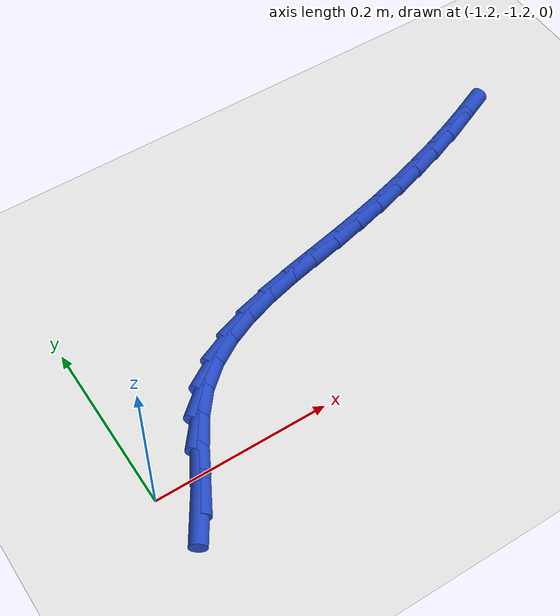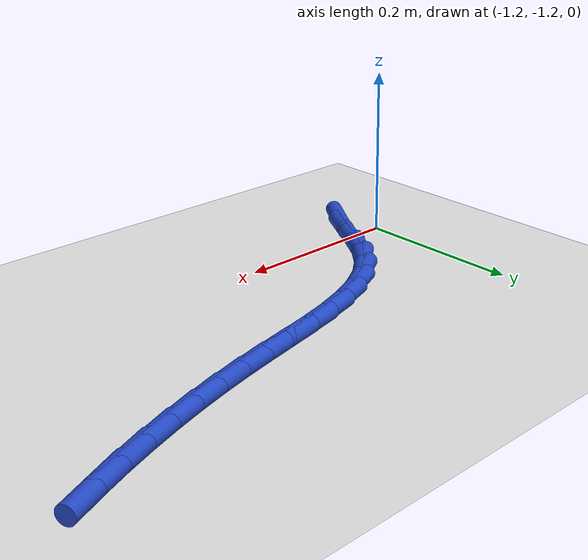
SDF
<sdf version="1.6">
 <world name="default">
  <model name="ground_plane">
   <static>1</static>
   <link name="link">
    <collision name="collision">
     <geometry><plane><normal>0 0 1</normal><size>100 100</size></plane></geometry>
     <surface><friction><ode><mu>100</mu><mu2>50</mu2></ode></friction></surface>
    </collision>
    <visual name="visual">
     <cast_shadows>0</cast_shadows>
     <geometry><plane><normal>0 0 1</normal><size>100 100</size></plane></geometry>
     <material>
      <script><uri>file://media/materials/scripts/gazebo.material</uri><name>Gazebo/WhiteGlow</name></script>
     </material>
    </visual>
   </link>
  </model>
  <model name="line">
   <link name="link_166">
    <pose>-1.1703718244567693 -1.236242698342462 0.01 0 1.57 0.9981574674073149</pose>
    <collision name="collision">
     <geometry><cylinder><radius>0.01</radius><length>0.08</length></cylinder></geometry>
    </collision>
    <visual name="visual">
     <material>
      <script><name>Gazebo/Blue</name><uri>file://media/materials/scripts/gazebo.material</uri></script>
     </material>
     <geometry><cylinder><radius>0.01</radius><length>0.08</length></cylinder></geometry>
    </visual>
   </link>
   <link name="link_167">
    <pose>-1.1533050083629022 -1.209770118449086 0.01 0 1.57 1.0666875061482994</pose>
    <collision name="collision">
     <geometry><cylinder><radius>0.01</radius><length>0.08</length></cylinder></geometry>
    </collision>
    <visual name="visual">
     <material>
      <script><name>Gazebo/Blue</name><uri>file://media/materials/scripts/gazebo.material</uri></script>
     </material>
     <geometry><cylinder><radius>0.01</radius><length>0.08</length></cylinder></geometry>
    </visual>
   </link>
   <link name="link_168">
    <pose>-1.1362859012073245 -1.178918819043703 0.01 0 1.57 1.0294121001519625</pose>
    <collision name="collision">
     <geometry><cylinder><radius>0.01</radius><length>0.08</length></cylinder></geometry>
    </collision>
    <visual name="visual">
     <material>
      <script><name>Gazebo/Blue</name><uri>file://media/materials/scripts/gazebo.material</uri></script>
     </material>
     <geometry><cylinder><radius>0.01</radius><length>0.08</length></cylinder></geometry>
    </visual>
   </link>
   <link name="link_169">
    <pose>-1.117661526809869 -1.1479459630457978 0.01 0 1.57 0.8921691122647628</pose>
    <collision name="collision">
     <geometry><cylinder><radius>0.01</radius><length>0.08</length></cylinder></geometry>
    </collision>
    <visual name="visual">
     <material>
      <script><name>Gazebo/Blue</name><uri>file://media/materials/scripts/gazebo.material</uri></script>
     </material>
     <geometry><cylinder><radius>0.01</radius><length>0.08</length></cylinder></geometry>
    </visual>
   </link>
   <link name="link_170">
    <pose>-1.0958631977286728 -1.1209140835802285 0.01 0 1.57 0.7104403583392468</pose>
    <collision name="collision">
     <geometry><cylinder><radius>0.01</radius><length>0.08</length></cylinder></geometry>
    </collision>
    <visual name="visual">
     <material>
      <script><name>Gazebo/Blue</name><uri>file://media/materials/scripts/gazebo.material</uri></script>
     </material>
     <geometry><cylinder><radius>0.01</radius><length>0.08</length></cylinder></geometry>
    </visual>
   </link>
   <link name="link_171">
    <pose>-1.0705226780253612 -1.0991137701612623 0.01 0 1.57 0.5488883089751425</pose>
    <collision name="collision">
     <geometry><cylinder><radius>0.01</radius><length>0.08</length></cylinder></geometry>
    </collision>
    <visual name="visual">
     <material>
      <script><name>Gazebo/Blue</name><uri>file://media/materials/scripts/gazebo.material</uri></script>
     </material>
     <geometry><cylinder><radius>0.01</radius><length>0.08</length></cylinder></geometry>
    </visual>
   </link>
   <link name="link_172">
    <pose>-1.0421657207841775 -1.081771316367863 0.01 0 1.57 0.4184125386838309</pose>
    <collision name="collision">
     <geometry><cylinder><radius>0.01</radius><length>0.08</length></cylinder></geometry>
    </collision>
    <visual name="visual">
     <material>
      <script><name>Gazebo/Blue</name><uri>file://media/materials/scripts/gazebo.material</uri></script>
     </material>
     <geometry><cylinder><radius>0.01</radius><length>0.08</length></cylinder></geometry>
    </visual>
   </link>
   <link name="link_173">
    <pose>-1.011339401110199 -1.0680637814373775 0.01 0 1.57 0.3211830656439573</pose>
    <collision name="collision">
     <geometry><cylinder><radius>0.01</radius><length>0.08</length></cylinder></geometry>
    </collision>
    <visual name="visual">
     <material>
      <script><name>Gazebo/Blue</name><uri>file://media/materials/scripts/gazebo.material</uri></script>
     </material>
     <geometry><cylinder><radius>0.01</radius><length>0.08</length></cylinder></geometry>
    </visual>
   </link>
   <link name="link_174">
    <pose>-0.9785907941085048 -1.0571682246071537 0.01 0 1.57 0.25531007122278226</pose>
    <collision name="collision">
     <geometry><cylinder><radius>0.01</radius><length>0.08</length></cylinder></geometry>
    </collision>
    <visual name="visual">
     <material>
      <script><name>Gazebo/Blue</name><uri>file://media/materials/scripts/gazebo.material</uri></script>
     </material>
     <geometry><cylinder><radius>0.01</radius><length>0.08</length></cylinder></geometry>
    </visual>
   </link>
   <link name="link_175">
    <pose>-0.9444669748841723 -1.048261705114539 0.01 0 1.57 0.21794145759040293</pose>
    <collision name="collision">
     <geometry><cylinder><radius>0.01</radius><length>0.08</length></cylinder></geometry>
    </collision>
    <visual name="visual">
     <material>
      <script><name>Gazebo/Blue</name><uri>file://media/materials/scripts/gazebo.material</uri></script>
     </material>
     <geometry><cylinder><radius>0.01</radius><length>0.08</length></cylinder></geometry>
    </visual>
   </link>
   <link name="link_176">
    <pose>-0.909515018542279 -1.0405212821968797 0.01 0 1.57 0.2069468854359148</pose>
    <collision name="collision">
     <geometry><cylinder><radius>0.01</radius><length>0.08</length></cylinder></geometry>
    </collision>
    <visual name="visual">
     <material>
      <script><name>Gazebo/Blue</name><uri>file://media/materials/scripts/gazebo.material</uri></script>
     </material>
     <geometry><cylinder><radius>0.01</radius><length>0.08</length></cylinder></geometry>
    </visual>
   </link>
   <link name="link_177">
    <pose>-0.874282000187903 -1.033124015091524 0.01 0 1.57 0.2207873226034661</pose>
    <collision name="collision">
     <geometry><cylinder><radius>0.01</radius><length>0.08</length></cylinder></geometry>
    </collision>
    <visual name="visual">
     <material>
      <script><name>Gazebo/Blue</name><uri>file://media/materials/scripts/gazebo.material</uri></script>
     </material>
     <geometry><cylinder><radius>0.01</radius><length>0.08</length></cylinder></geometry>
    </visual>
   </link>
   <link name="link_178">
    <pose>-0.8392985188124895 -1.0252721035195729 0.01 0 1.57 0.24657723219587777</pose>
    <collision name="collision">
     <geometry><cylinder><radius>0.01</radius><length>0.08</length></cylinder></geometry>
    </collision>
    <visual name="visual">
     <material>
      <script><name>Gazebo/Blue</name><uri>file://media/materials/scripts/gazebo.material</uri></script>
     </material>
     <geometry><cylinder><radius>0.01</radius><length>0.08</length></cylinder></geometry>
    </visual>
   </link>
   <link name="link_179">
    <pose>-0.8048164772383505 -1.0165930026154704 0.01 0 1.57 0.2734271730491361</pose>
    <collision name="collision">
     <geometry><cylinder><radius>0.01</radius><length>0.08</length></cylinder></geometry>
    </collision>
    <visual name="visual">
     <material>
      <script><name>Gazebo/Blue</name><uri>file://media/materials/scripts/gazebo.material</uri></script>
     </material>
     <geometry><cylinder><radius>0.01</radius><length>0.08</length></cylinder></geometry>
    </visual>
   </link>
   <link name="link_180">
    <pose>-0.7708554965177147 -1.007068600373122 0.01 0 1.57 0.30100121810419594</pose>
    <collision name="collision">
     <geometry><cylinder><radius>0.01</radius><length>0.08</length></cylinder></geometry>
    </collision>
    <visual name="visual">
     <material>
      <script><name>Gazebo/Blue</name><uri>file://media/materials/scripts/gazebo.material</uri></script>
     </material>
     <geometry><cylinder><radius>0.01</radius><length>0.08</length></cylinder></geometry>
    </visual>
   </link>
   <link name="link_181">
    <pose>-0.7374281011470051 -0.9966916132408804 0.01 0 1.57 0.32929751542713126</pose>
    <collision name="collision">
     <geometry><cylinder><radius>0.01</radius><length>0.08</length></cylinder></geometry>
    </collision>
    <visual name="visual">
     <material>
      <script><name>Gazebo/Blue</name><uri>file://media/materials/scripts/gazebo.material</uri></script>
     </material>
     <geometry><cylinder><radius>0.01</radius><length>0.08</length></cylinder></geometry>
    </visual>
   </link>
   <link name="link_182">
    <pose>-0.7045468156226447 -0.9854547576670982 0.01 0 1.57 0.3583098492527653</pose>
    <collision name="collision">
     <geometry><cylinder><radius>0.01</radius><length>0.08</length></cylinder></geometry>
    </collision>
    <visual name="visual">
     <material>
      <script><name>Gazebo/Blue</name><uri>file://media/materials/scripts/gazebo.material</uri></script>
     </material>
     <geometry><cylinder><radius>0.01</radius><length>0.08</length></cylinder></geometry>
    </visual>
   </link>
   <link name="link_183">
    <pose>-0.6722241644410584 -0.973350750100129 0.01 0 1.57 0.3880272042528472</pose>
    <collision name="collision">
     <geometry><cylinder><radius>0.01</radius><length>0.08</length></cylinder></geometry>
    </collision>
    <visual name="visual">
     <material>
      <script><name>Gazebo/Blue</name><uri>file://media/materials/scripts/gazebo.material</uri></script>
     </material>
     <geometry><cylinder><radius>0.01</radius><length>0.08</length></cylinder></geometry>
    </visual>
   </link>
   <link name="link_184">
    <pose>-0.6404726720986693 -0.9603723069883259 0.01 0 1.57 0.4184333596494421</pose>
    <collision name="collision">
     <geometry><cylinder><radius>0.01</radius><length>0.08</length></cylinder></geometry>
    </collision>
    <visual name="visual">
     <material>
      <script><name>Gazebo/Blue</name><uri>file://media/materials/scripts/gazebo.material</uri></script>
     </material>
     <geometry><cylinder><radius>0.01</radius><length>0.08</length></cylinder></geometry>
    </visual>
   </link>
  </model>
 </world>
</sdf>
